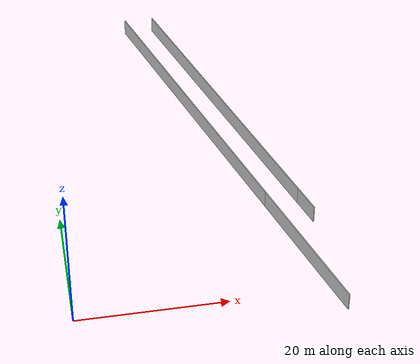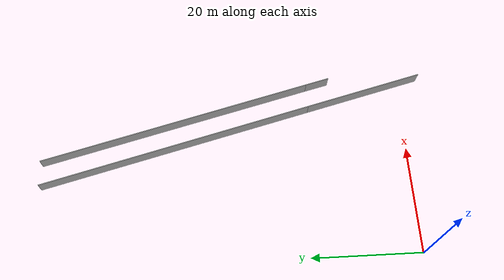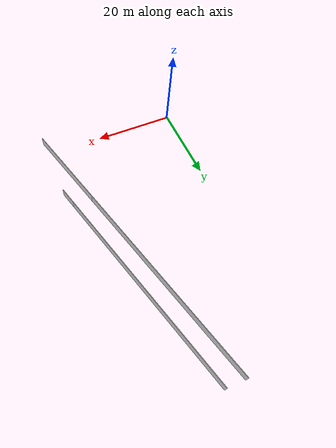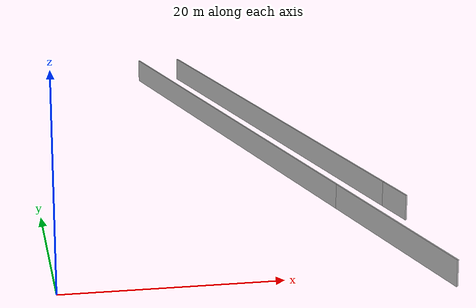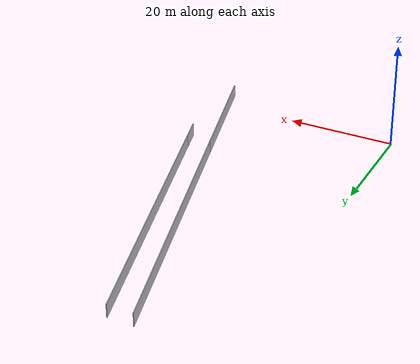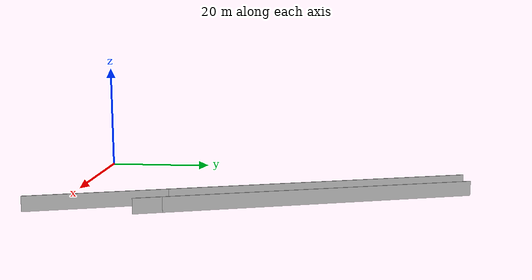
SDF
<?xml version="1.0" ?>
<sdf version="1.6">
  <model name="sps_0705">
    <pose frame="">0 0 0 0 -0 0</pose>
    <static>1</static>
    <self_collide>0</self_collide>
    <allow_auto_disable>0</allow_auto_disable>
    <link name="Wall92">
      <kinematic>0</kinematic>
      <gravity>1</gravity>
      <self_collide>0</self_collide>
      <collision name="collision">
        <geometry>
          <box>
            <size>4.5452 0.15 2.5</size>
          </box>
        </geometry>
        <pose frame="">0 0 0 0 -0 0</pose>
      </collision>
      <visual name="visual">
        <geometry>
          <box>
            <size>4.5452 0.15 2.5</size>
          </box>
        </geometry>
        <pose frame="">0 0 0 0 -0 0</pose>
        <cast_shadows>1</cast_shadows>
        <transparency>0.0</transparency>
      </visual>
      <pose frame="">33.8843 15.6971 1.25 0 -0 1.83122</pose>
    </link>
    <link name="Wall93">
      <kinematic>0</kinematic>
      <gravity>1</gravity>
      <self_collide>0</self_collide>
      <collision name="collision">
        <geometry>
          <box>
            <size>51.7448 0.15 2.5</size>
          </box>
        </geometry>
        <pose frame="">0 0 0 0 -0 0</pose>
      </collision>
      <visual name="visual">
        <geometry>
          <box>
            <size>51.7448 0.15 2.5</size>
          </box>
        </geometry>
        <pose frame="">0 0 0 0 -0 0</pose>
        <cast_shadows>1</cast_shadows>
        <transparency>0.0</transparency>
      </visual>
      <pose frame="">26.6371 42.8931 1.25 0 -0 1.83122</pose>
    </link>
    <link name="Wall498">
      <kinematic>0</kinematic>
      <gravity>1</gravity>
      <self_collide>0</self_collide>
      <collision name="collision">
        <geometry>
          <box>
            <size>22.6316 0.15 2.5</size>
          </box>
        </geometry>
        <pose frame="">0 0 0 0 -0 0</pose>
      </collision>
      <visual name="visual">
        <geometry>
          <box>
            <size>22.6316 0.15 2.5</size>
          </box>
        </geometry>
        <pose frame="">0 0 0 0 -0 0</pose>
        <cast_shadows>1</cast_shadows>
        <transparency>0.0</transparency>
      </visual>
      <pose frame="">31.5557 6.95886 1.25 0 -0 1.83122</pose>
    </link>
    <link name="Wall499">
      <kinematic>0</kinematic>
      <gravity>1</gravity>
      <self_collide>0</self_collide>
      <collision name="collision">
        <geometry>
          <box>
            <size>51.7448 0.15 2.5</size>
          </box>
        </geometry>
        <pose frame="">0 0 0 0 -0 0</pose>
      </collision>
      <visual name="visual">
        <geometry>
          <box>
            <size>51.7448 0.15 2.5</size>
          </box>
        </geometry>
        <pose frame="">0 0 0 0 -0 0</pose>
        <cast_shadows>1</cast_shadows>
        <transparency>0.0</transparency>
      </visual>
      <pose frame="">21.9799 42.8931 1.25 0 -0 1.83122</pose>
    </link>
  </model>
</sdf>
